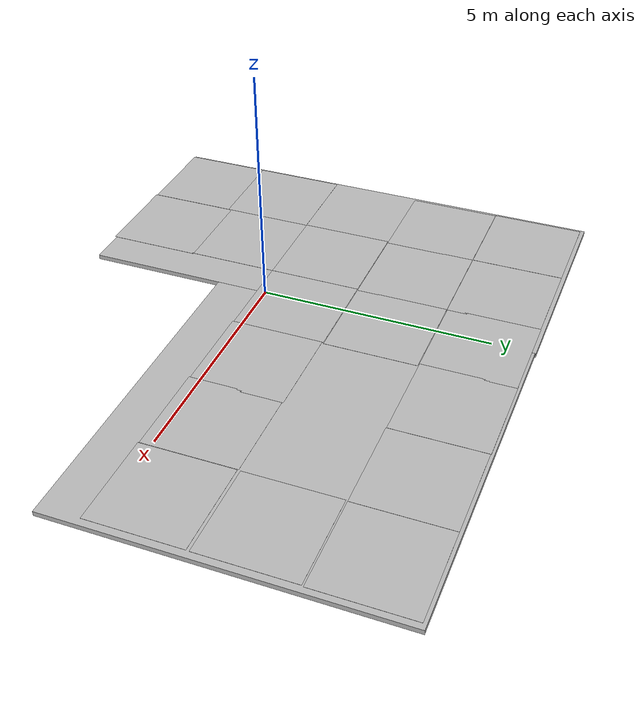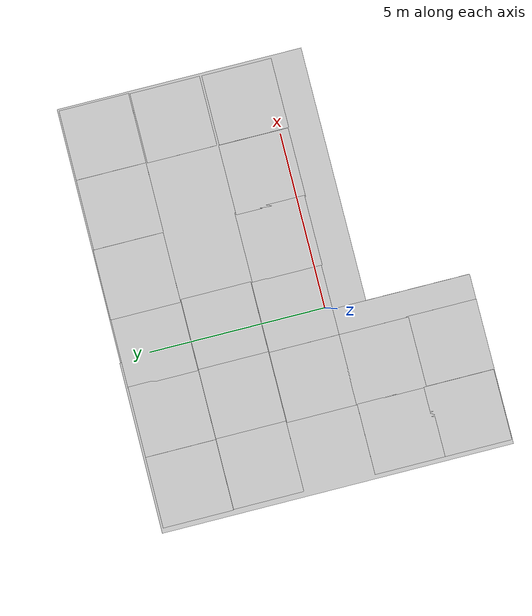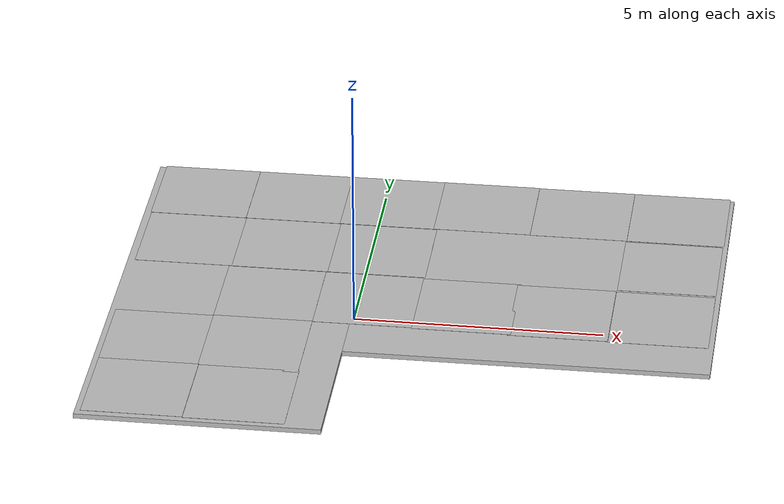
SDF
<sdf version="1.6">
 <world name="default">
  <light name="sun_light" type="directional">
   <pose>0 0 10 0 -0 0</pose>
   <diffuse>0.5 0.5 0.5 1</diffuse>
   <specular>0.1 0.1 0.1 1</specular>
   <direction>0.1 0.1 -0.9</direction>
   <attenuation>
    <range>20</range>
    <constant>0.5</constant>
    <linear>0.01</linear>
    <quadratic>0.001</quadratic>
   </attenuation>
  </light>
  <gravity>0 0 -9.8</gravity>
  <magnetic_field>6e-06 2.3e-05 -4.2e-05</magnetic_field>
  <atmosphere type="adiabatic"/>
  <physics name="default_physics" default="0" type="ode">
   <max_step_size>0.001</max_step_size>
   <real_time_factor>1</real_time_factor>
   <real_time_update_rate>1000</real_time_update_rate>
  </physics>
  <scene><ambient>0.4 0.4 0.4 1</ambient><background>0.7 0.7 0.7 1</background><shadows>1</shadows></scene>
  <spherical_coordinates>
   <surface_model>EARTH_WGS84</surface_model>
   <latitude_deg>0</latitude_deg>
   <longitude_deg>0</longitude_deg>
   <elevation>0</elevation>
   <heading_deg>0</heading_deg>
  </spherical_coordinates>
  <model name="ground">
   <static>1</static>
   <link name="ground_1">
    <collision name="collision"><geometry><box><size>7.3 7.04 0.1</size></box></geometry></collision>
    <visual name="visual"><geometry><box><size>7.3 7.04 0.1</size></box></geometry></visual>
    <pose>3.65 3.52 -0.06 0 -0 0</pose>
   </link>
   <link name="ground_2">
    <collision name="collision"><geometry><box><size>4.85 10.04 0.1</size></box></geometry></collision>
    <visual name="visual"><geometry><box><size>4.85 10.04 0.1</size></box></geometry></visual>
    <pose>-2.425 2.04 -0.06 0 -0 0</pose>
   </link>
   <joint name="ground_joint" type="fixed"><child>ground_1</child><parent>ground_2</parent></joint>
   <pose>-0.08663 -1.15711 -0.06 0 -0 0</pose>
  </model>
  <model name="Tile/4-2">
   <static>1</static>
   <link name="link">
    <collision name="collision">
     <geometry><plane><normal>0 0 1</normal><size>2 2</size></plane></geometry>
     <surface><friction><ode><mu>100</mu><mu2>50</mu2></ode></friction></surface>
    </collision>
    <visual name="visual">
     <cast_shadows>0</cast_shadows>
     <geometry><plane><normal>0 0 1</normal><size>2 2</size></plane></geometry>
     <material>
      <script>
       <uri>model://modular-world/modular_2m/materials/scripts</uri>
       <uri>model://modular-world/modular_2m/materials/textures</uri>
       <name>Tile/14e3d85895e79413dab1ea113f144297a9f2d131d73825067e3ddf7c9754889d</name>
      </script>
     </material>
    </visual>
   </link>
   <pose>6.11392 0.732932 0 0 -0 0</pose>
  </model>
  <model name="Tile/4-4">
   <static>1</static>
   <link name="link">
    <collision name="collision">
     <geometry><plane><normal>0 0 1</normal><size>2 2</size></plane></geometry>
     <surface><friction><ode><mu>100</mu><mu2>50</mu2></ode></friction></surface>
    </collision>
    <visual name="visual">
     <cast_shadows>0</cast_shadows>
     <geometry><plane><normal>0 0 1</normal><size>2 2</size></plane></geometry>
     <material>
      <script>
       <uri>model://modular-world/modular_2m/materials/scripts</uri>
       <uri>model://modular-world/modular_2m/materials/textures</uri>
       <name>Tile/f803f96774846818d9b438ab886f218235cf7d0a546a34c70c1d692b1468e254</name>
      </script>
     </material>
    </visual>
   </link>
   <pose>6.13943 4.827 0 0 -0 0</pose>
  </model>
  <model name="Tile/4-5">
   <static>1</static>
   <link name="link">
    <collision name="collision">
     <geometry><plane><normal>0 0 1</normal><size>2 2</size></plane></geometry>
     <surface><friction><ode><mu>100</mu><mu2>50</mu2></ode></friction></surface>
    </collision>
    <visual name="visual">
     <cast_shadows>0</cast_shadows>
     <geometry><plane><normal>0 0 1</normal><size>2 2</size></plane></geometry>
     <material>
      <script>
       <uri>model://modular-world/modular_2m/materials/scripts</uri>
       <uri>model://modular-world/modular_2m/materials/textures</uri>
       <name>Tile/02def6b9240a7482fa2832e5ae21c512966e8eabe7deb95510b41174e57c0297</name>
      </script>
     </material>
    </visual>
   </link>
   <pose>4.13703 4.827 0 0 -0 0</pose>
  </model>
  <model name="Tile/3-5">
   <static>1</static>
   <link name="link">
    <collision name="collision">
     <geometry><plane><normal>0 0 1</normal><size>2 2</size></plane></geometry>
     <surface><friction><ode><mu>100</mu><mu2>50</mu2></ode></friction></surface>
    </collision>
    <visual name="visual">
     <cast_shadows>0</cast_shadows>
     <geometry><plane><normal>0 0 1</normal><size>2 2</size></plane></geometry>
     <material>
      <script>
       <uri>model://modular-world/modular_2m/materials/scripts</uri>
       <uri>model://modular-world/modular_2m/materials/textures</uri>
       <name>Tile/85ea2b735e72bbf48614cb9e2f138ff51ed6bde0dbfad033c487c8ba1f7f0d46</name>
      </script>
     </material>
    </visual>
   </link>
   <pose>-1.78088 4.827 0 0 -0 0</pose>
  </model>
  <model name="Tile/3-4">
   <static>1</static>
   <link name="link">
    <collision name="collision">
     <geometry><plane><normal>0 0 1</normal><size>2 2</size></plane></geometry>
     <surface><friction><ode><mu>100</mu><mu2>50</mu2></ode></friction></surface>
    </collision>
    <visual name="visual">
     <cast_shadows>0</cast_shadows>
     <geometry><plane><normal>0 0 1</normal><size>2 2</size></plane></geometry>
     <material>
      <script>
       <uri>model://modular-world/modular_2m/materials/scripts</uri>
       <uri>model://modular-world/modular_2m/materials/textures</uri>
       <name>Tile/d95b1beaf9154856c16c2c7feacb608d804b5b73fcb1ef02092da70ff405852c</name>
      </script>
     </material>
    </visual>
   </link>
   <pose>2.13467 4.83976 0 0 -0 0</pose>
  </model>
  <model name="Tile/2-5">
   <static>1</static>
   <link name="link">
    <collision name="collision">
     <geometry><plane><normal>0 0 1</normal><size>2 2</size></plane></geometry>
     <surface><friction><ode><mu>100</mu><mu2>50</mu2></ode></friction></surface>
    </collision>
    <visual name="visual">
     <cast_shadows>0</cast_shadows>
     <geometry><plane><normal>0 0 1</normal><size>2 2</size></plane></geometry>
     <material>
      <script>
       <uri>model://modular-world/modular_2m/materials/scripts</uri>
       <uri>model://modular-world/modular_2m/materials/textures</uri>
       <name>Tile/2a477a2058ff16b04aac33a033b522f2c73191322214506ef664d16f9345dd9e</name>
      </script>
     </material>
    </visual>
   </link>
   <pose>-3.78324 4.827 0 0 -0 0</pose>
  </model>
  <model name="Tile/4-3">
   <static>1</static>
   <link name="link">
    <collision name="collision">
     <geometry><plane><normal>0 0 1</normal><size>2 2</size></plane></geometry>
     <surface><friction><ode><mu>100</mu><mu2>50</mu2></ode></friction></surface>
    </collision>
    <visual name="visual">
     <cast_shadows>0</cast_shadows>
     <geometry><plane><normal>0 0 1</normal><size>2 2</size></plane></geometry>
     <material>
      <script>
       <uri>model://modular-world/modular_2m/materials/scripts</uri>
       <uri>model://modular-world/modular_2m/materials/textures</uri>
       <name>Tile/9e39a20132603ff754673dedcad757b2602740de21a762e9342953b9dd3b0794</name>
      </script>
     </material>
    </visual>
   </link>
   <pose>6.11976 2.79361 0 0 -0 0</pose>
  </model>
  <model name="Tile/2-4">
   <static>1</static>
   <link name="link">
    <collision name="collision">
     <geometry><plane><normal>0 0 1</normal><size>2 2</size></plane></geometry>
     <surface><friction><ode><mu>100</mu><mu2>50</mu2></ode></friction></surface>
    </collision>
    <visual name="visual">
     <cast_shadows>0</cast_shadows>
     <geometry><plane><normal>0 0 1</normal><size>2 2</size></plane></geometry>
     <material>
      <script>
       <uri>model://modular-world/modular_2m/materials/scripts</uri>
       <uri>model://modular-world/modular_2m/materials/textures</uri>
       <name>Tile/d1104a1ce1c2a4da575261043327b8a6f88bc21e4f3d2a2efc81f7464eb275b9</name>
      </script>
     </material>
    </visual>
   </link>
   <pose>-3.76649 2.81975 0 0 -0 0</pose>
  </model>
  <model name="Tile/3-4_0">
   <static>1</static>
   <link name="link">
    <collision name="collision">
     <geometry><plane><normal>0 0 1</normal><size>2 2</size></plane></geometry>
     <surface><friction><ode><mu>100</mu><mu2>50</mu2></ode></friction></surface>
    </collision>
    <visual name="visual">
     <cast_shadows>0</cast_shadows>
     <geometry><plane><normal>0 0 1</normal><size>2 2</size></plane></geometry>
     <material>
      <script>
       <uri>model://modular-world/modular_2m/materials/scripts</uri>
       <uri>model://modular-world/modular_2m/materials/textures</uri>
       <name>Tile/d95b1beaf9154856c16c2c7feacb608d804b5b73fcb1ef02092da70ff405852c</name>
      </script>
     </material>
    </visual>
   </link>
   <pose>0.182727 4.83358 0 0 -0 0</pose>
  </model>
  <model name="Tile/3-5_0">
   <static>1</static>
   <link name="link">
    <collision name="collision">
     <geometry><plane><normal>0 0 1</normal><size>2 2</size></plane></geometry>
     <surface><friction><ode><mu>100</mu><mu2>50</mu2></ode></friction></surface>
    </collision>
    <visual name="visual">
     <cast_shadows>0</cast_shadows>
     <geometry><plane><normal>0 0 1</normal><size>2 2</size></plane></geometry>
     <material>
      <script>
       <uri>model://modular-world/modular_2m/materials/scripts</uri>
       <uri>model://modular-world/modular_2m/materials/textures</uri>
       <name>Tile/85ea2b735e72bbf48614cb9e2f138ff51ed6bde0dbfad033c487c8ba1f7f0d46</name>
      </script>
     </material>
    </visual>
   </link>
   <pose>-1.77868 2.81975 0 0 -0 0</pose>
  </model>
  <model name="Tile/4-4_0">
   <static>1</static>
   <link name="link">
    <collision name="collision">
     <geometry><plane><normal>0 0 1</normal><size>2 2</size></plane></geometry>
     <surface><friction><ode><mu>100</mu><mu2>50</mu2></ode></friction></surface>
    </collision>
    <visual name="visual">
     <cast_shadows>0</cast_shadows>
     <geometry><plane><normal>0 0 1</normal><size>2 2</size></plane></geometry>
     <material>
      <script>
       <uri>model://modular-world/modular_2m/materials/scripts</uri>
       <uri>model://modular-world/modular_2m/materials/textures</uri>
       <name>Tile/f803f96774846818d9b438ab886f218235cf7d0a546a34c70c1d692b1468e254</name>
      </script>
     </material>
    </visual>
   </link>
   <pose>0.208958 2.81975 0 0 -0 0</pose>
  </model>
  <model name="Tile/4-5_0">
   <static>1</static>
   <link name="link">
    <collision name="collision">
     <geometry><plane><normal>0 0 1</normal><size>2 2</size></plane></geometry>
     <surface><friction><ode><mu>100</mu><mu2>50</mu2></ode></friction></surface>
    </collision>
    <visual name="visual">
     <cast_shadows>0</cast_shadows>
     <geometry><plane><normal>0 0 1</normal><size>2 2</size></plane></geometry>
     <material>
      <script>
       <uri>model://modular-world/modular_2m/materials/scripts</uri>
       <uri>model://modular-world/modular_2m/materials/textures</uri>
       <name>Tile/02def6b9240a7482fa2832e5ae21c512966e8eabe7deb95510b41174e57c0297</name>
      </script>
     </material>
    </visual>
   </link>
   <pose>4.10589 0.75355 0 0 -0 0</pose>
  </model>
  <model name="Tile/3-4_1">
   <static>1</static>
   <link name="link">
    <collision name="collision">
     <geometry><plane><normal>0 0 1</normal><size>2 2</size></plane></geometry>
     <surface><friction><ode><mu>100</mu><mu2>50</mu2></ode></friction></surface>
    </collision>
    <visual name="visual">
     <cast_shadows>0</cast_shadows>
     <geometry><plane><normal>0 0 1</normal><size>2 2</size></plane></geometry>
     <material>
      <script>
       <uri>model://modular-world/modular_2m/materials/scripts</uri>
       <uri>model://modular-world/modular_2m/materials/textures</uri>
       <name>Tile/d95b1beaf9154856c16c2c7feacb608d804b5b73fcb1ef02092da70ff405852c</name>
      </script>
     </material>
    </visual>
   </link>
   <pose>2.17054 0.779694 0 0 -0 0</pose>
  </model>
  <model name="Tile/2-4_0">
   <static>1</static>
   <link name="link">
    <collision name="collision">
     <geometry><plane><normal>0 0 1</normal><size>2 2</size></plane></geometry>
     <surface><friction><ode><mu>100</mu><mu2>50</mu2></ode></friction></surface>
    </collision>
    <visual name="visual">
     <cast_shadows>0</cast_shadows>
     <geometry><plane><normal>0 0 1</normal><size>2 2</size></plane></geometry>
     <material>
      <script>
       <uri>model://modular-world/modular_2m/materials/scripts</uri>
       <uri>model://modular-world/modular_2m/materials/textures</uri>
       <name>Tile/d1104a1ce1c2a4da575261043327b8a6f88bc21e4f3d2a2efc81f7464eb275b9</name>
      </script>
     </material>
    </visual>
   </link>
   <pose>0.182727 0.805838 0 0 -0 0</pose>
  </model>
  <model name="Tile/4-3_0">
   <static>1</static>
   <link name="link">
    <collision name="collision">
     <geometry><plane><normal>0 0 1</normal><size>2 2</size></plane></geometry>
     <surface><friction><ode><mu>100</mu><mu2>50</mu2></ode></friction></surface>
    </collision>
    <visual name="visual">
     <cast_shadows>0</cast_shadows>
     <geometry><plane><normal>0 0 1</normal><size>2 2</size></plane></geometry>
     <material>
      <script>
       <uri>model://modular-world/modular_2m/materials/scripts</uri>
       <uri>model://modular-world/modular_2m/materials/textures</uri>
       <name>Tile/9e39a20132603ff754673dedcad757b2602740de21a762e9342953b9dd3b0794</name>
      </script>
     </material>
    </visual>
   </link>
   <pose>-1.81782 0.806435 0 0 -0 0</pose>
  </model>
  <model name="Tile/3-5_1">
   <static>1</static>
   <link name="link">
    <collision name="collision">
     <geometry><plane><normal>0 0 1</normal><size>2 2</size></plane></geometry>
     <surface><friction><ode><mu>100</mu><mu2>50</mu2></ode></friction></surface>
    </collision>
    <visual name="visual">
     <cast_shadows>0</cast_shadows>
     <geometry><plane><normal>0 0 1</normal><size>2 2</size></plane></geometry>
     <material>
      <script>
       <uri>model://modular-world/modular_2m/materials/scripts</uri>
       <uri>model://modular-world/modular_2m/materials/textures</uri>
       <name>Tile/85ea2b735e72bbf48614cb9e2f138ff51ed6bde0dbfad033c487c8ba1f7f0d46</name>
      </script>
     </material>
    </visual>
   </link>
   <pose>-1.81782 -1.17884 0 0 -0 0</pose>
  </model>
  <model name="Tile/2-5_0">
   <static>1</static>
   <link name="link">
    <collision name="collision">
     <geometry><plane><normal>0 0 1</normal><size>2 2</size></plane></geometry>
     <surface><friction><ode><mu>100</mu><mu2>50</mu2></ode></friction></surface>
    </collision>
    <visual name="visual">
     <cast_shadows>0</cast_shadows>
     <geometry><plane><normal>0 0 1</normal><size>2 2</size></plane></geometry>
     <material>
      <script>
       <uri>model://modular-world/modular_2m/materials/scripts</uri>
       <uri>model://modular-world/modular_2m/materials/textures</uri>
       <name>Tile/2a477a2058ff16b04aac33a033b522f2c73191322214506ef664d16f9345dd9e</name>
      </script>
     </material>
    </visual>
   </link>
   <pose>-3.80317 -1.1991 0 0 -0 0</pose>
  </model>
  <model name="Tile/2-4_1">
   <static>1</static>
   <link name="link">
    <collision name="collision">
     <geometry><plane><normal>0 0 1</normal><size>2 2</size></plane></geometry>
     <surface><friction><ode><mu>100</mu><mu2>50</mu2></ode></friction></surface>
    </collision>
    <visual name="visual">
     <cast_shadows>0</cast_shadows>
     <geometry><plane><normal>0 0 1</normal><size>2 2</size></plane></geometry>
     <material>
      <script>
       <uri>model://modular-world/modular_2m/materials/scripts</uri>
       <uri>model://modular-world/modular_2m/materials/textures</uri>
       <name>Tile/d1104a1ce1c2a4da575261043327b8a6f88bc21e4f3d2a2efc81f7464eb275b9</name>
      </script>
     </material>
    </visual>
   </link>
   <pose>-3.80317 -3.10331 0 0 -0 0</pose>
  </model>
  <model name="Tile/4-2_0">
   <static>1</static>
   <link name="link">
    <collision name="collision">
     <geometry><plane><normal>0 0 1</normal><size>2 2</size></plane></geometry>
     <surface><friction><ode><mu>100</mu><mu2>50</mu2></ode></friction></surface>
    </collision>
    <visual name="visual">
     <cast_shadows>0</cast_shadows>
     <geometry><plane><normal>0 0 1</normal><size>2 2</size></plane></geometry>
     <material>
      <script>
       <uri>model://modular-world/modular_2m/materials/scripts</uri>
       <uri>model://modular-world/modular_2m/materials/textures</uri>
       <name>Tile/14e3d85895e79413dab1ea113f144297a9f2d131d73825067e3ddf7c9754889d</name>
      </script>
     </material>
    </visual>
   </link>
   <pose>-1.79757 -3.12363 0 0 -0 0</pose>
  </model>
 </world>
</sdf>
